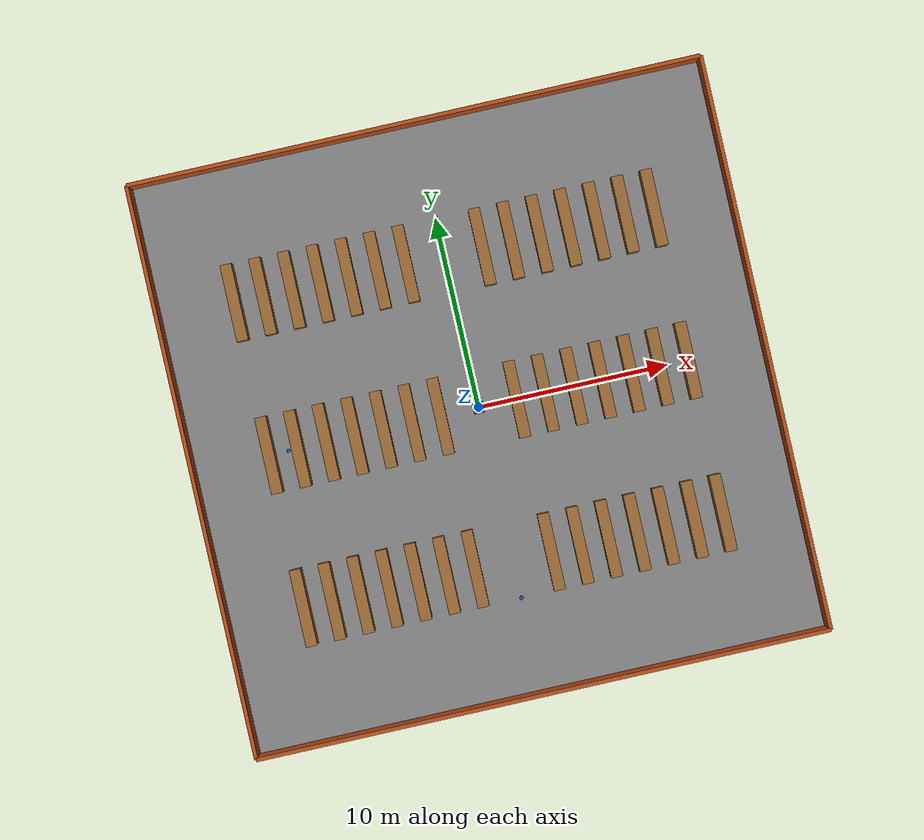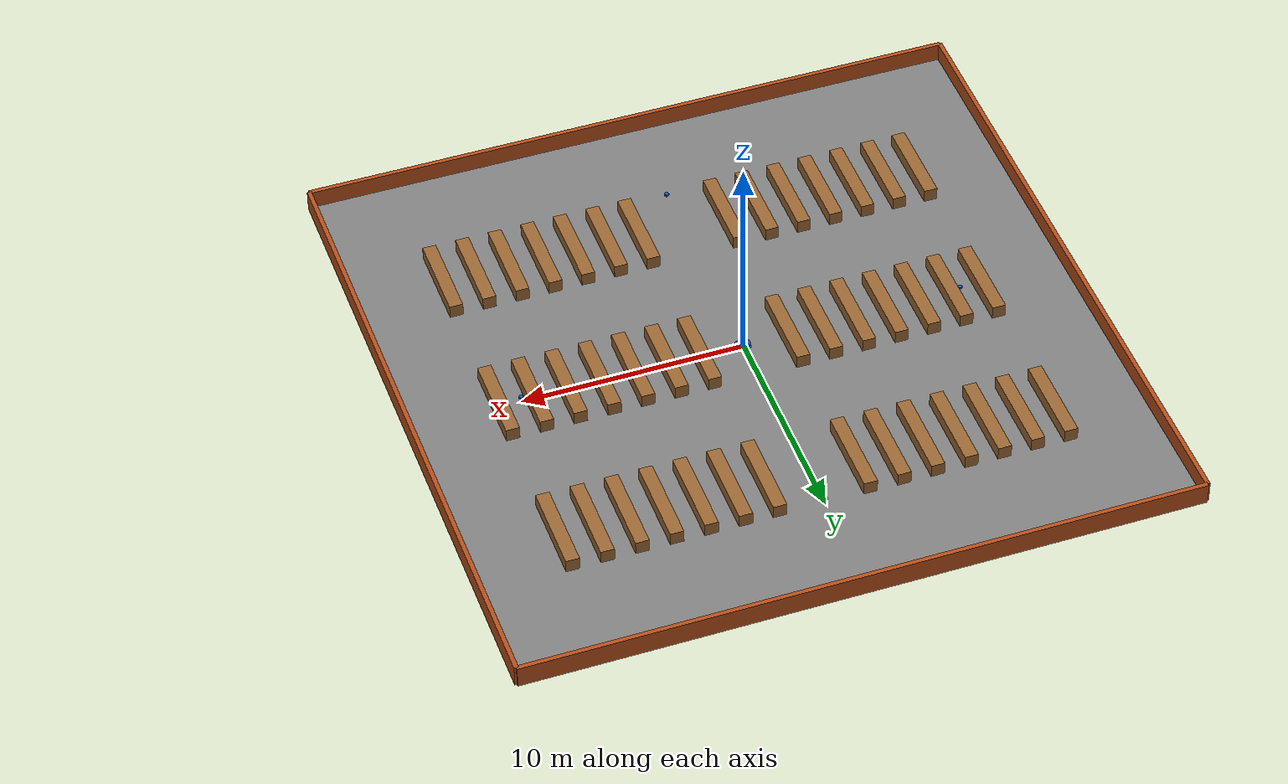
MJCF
<?xml version="1.0" encoding="utf-8"?>
<mujoco>
    <option timestep="0.002" integrator="RK4">
        <flag contact="enable" />
    </option>

    <default>
        <joint armature="1" damping="1" limited="true"/>
        <geom conaffinity="1" condim="3" friction="1 0.5 0.5" margin="0.01"/>
    </default>

    <asset>
        <material name="floor" rgba=".5 .5 .5 1"/>
        <material name="robot" rgba=".1 .3 .7 1"/>
        <material name="obstacle" rgba=".7 .3 .1 1"/>
        <material name="shelf" rgba=".6 .4 .2 1"/>
    </asset>

    <worldbody>
        <!-- Floor -->
        <geom name="floor" pos="0 0 0" size="15 15 0.1" type="plane" material="floor"/>

        <!-- Robot -->
        <body name="robot" pos="0 0 0.1">
            <joint name="robot_x" type="slide" axis="1 0 0" pos="0 0 0" range="-15 15"/>
            <joint name="robot_y" type="slide" axis="0 1 0" pos="0 0 0" range="-15 15"/>
            <joint name="robot_rot" type="hinge" axis="0 0 1" pos="0 0 0" range="-3.14159 3.14159"/>
            <geom name="robot_body" type="cylinder" size="0.3 0.1" material="robot"/>

            <!-- Wheels (visual only) -->
            <geom name="wheel1" type="cylinder" size="0.1 0.02" pos="0.2 0.2 0" material="robot"/>
            <geom name="wheel2" type="cylinder" size="0.1 0.02" pos="0.2 -0.2 0" material="robot"/>
            <geom name="wheel3" type="cylinder" size="0.1 0.02" pos="-0.2 0.2 0" material="robot"/>
            <geom name="wheel4" type="cylinder" size="0.1 0.02" pos="-0.2 -0.2 0" material="robot"/>
        </body>

        <!-- Static Obstacles -->
        <body name="obstacles" pos="0 0 0.3">
            <!-- Group 1 - Northwest Quadrant (Parallel Formation) -->
            <geom name="g1_shelf1" type="box" size="0.3 2.0 0.3" pos="-11 8 0" material="shelf"/>
            <geom name="g1_shelf2" type="box" size="0.3 2.0 0.3" pos="-9.5 8 0" material="shelf"/>
            <geom name="g1_shelf3" type="box" size="0.3 2.0 0.3" pos="-8 8 0" material="shelf"/>
            <geom name="g1_shelf4" type="box" size="0.3 2.0 0.3" pos="-6.5 8 0" material="shelf"/>
            <geom name="g1_shelf5" type="box" size="0.3 2.0 0.3" pos="-5 8 0" material="shelf"/>
            <geom name="g1_shelf6" type="box" size="0.3 2.0 0.3" pos="-3.5 8 0" material="shelf"/>
            <geom name="g1_shelf7" type="box" size="0.3 2.0 0.3" pos="-2 8 0" material="shelf"/>

            <!-- Group 2 - Northeast Quadrant (Parallel Formation) -->
            <geom name="g2_shelf1" type="box" size="0.3 2.0 0.3" pos="2 8 0" material="shelf"/>
            <geom name="g2_shelf2" type="box" size="0.3 2.0 0.3" pos="3.5 8 0" material="shelf"/>
            <geom name="g2_shelf3" type="box" size="0.3 2.0 0.3" pos="5 8 0" material="shelf"/>
            <geom name="g2_shelf4" type="box" size="0.3 2.0 0.3" pos="6.5 8 0" material="shelf"/>
            <geom name="g2_shelf5" type="box" size="0.3 2.0 0.3" pos="8 8 0" material="shelf"/>
            <geom name="g2_shelf6" type="box" size="0.3 2.0 0.3" pos="9.5 8 0" material="shelf"/>
            <geom name="g2_shelf7" type="box" size="0.3 2.0 0.3" pos="11 8 0" material="shelf"/>

            <!-- Group 3 - Southwest Quadrant (Parallel Formation) -->
            <geom name="g3_shelf1" type="box" size="0.3 2.0 0.3" pos="-11 -8 0" material="shelf"/>
            <geom name="g3_shelf2" type="box" size="0.3 2.0 0.3" pos="-9.5 -8 0" material="shelf"/>
            <geom name="g3_shelf3" type="box" size="0.3 2.0 0.3" pos="-8 -8 0" material="shelf"/>
            <geom name="g3_shelf4" type="box" size="0.3 2.0 0.3" pos="-6.5 -8 0" material="shelf"/>
            <geom name="g3_shelf5" type="box" size="0.3 2.0 0.3" pos="-5 -8 0" material="shelf"/>
            <geom name="g3_shelf6" type="box" size="0.3 2.0 0.3" pos="-3.5 -8 0" material="shelf"/>
            <geom name="g3_shelf7" type="box" size="0.3 2.0 0.3" pos="-2 -8 0" material="shelf"/>

            <!-- Group 4 - Southeast Quadrant (Parallel Formation) -->
            <geom name="g4_shelf1" type="box" size="0.3 2.0 0.3" pos="2 -8 0" material="shelf"/>
            <geom name="g4_shelf2" type="box" size="0.3 2.0 0.3" pos="3.5 -8 0" material="shelf"/>
            <geom name="g4_shelf3" type="box" size="0.3 2.0 0.3" pos="5 -8 0" material="shelf"/>
            <geom name="g4_shelf4" type="box" size="0.3 2.0 0.3" pos="6.5 -8 0" material="shelf"/>
            <geom name="g4_shelf5" type="box" size="0.3 2.0 0.3" pos="8 -8 0" material="shelf"/>
            <geom name="g4_shelf6" type="box" size="0.3 2.0 0.3" pos="9.5 -8 0" material="shelf"/>
            <geom name="g4_shelf7" type="box" size="0.3 2.0 0.3" pos="11 -8 0" material="shelf"/>

            <!-- Group 5 - Center West (Parallel Formation) -->
            <geom name="g5_shelf1" type="box" size="0.3 2.0 0.3" pos="-11 0 0" material="shelf"/>
            <geom name="g5_shelf2" type="box" size="0.3 2.0 0.3" pos="-9.5 0 0" material="shelf"/>
            <geom name="g5_shelf3" type="box" size="0.3 2.0 0.3" pos="-8 0 0" material="shelf"/>
            <geom name="g5_shelf4" type="box" size="0.3 2.0 0.3" pos="-6.5 0 0" material="shelf"/>
            <geom name="g5_shelf5" type="box" size="0.3 2.0 0.3" pos="-5 0 0" material="shelf"/>
            <geom name="g5_shelf6" type="box" size="0.3 2.0 0.3" pos="-3.5 0 0" material="shelf"/>
            <geom name="g5_shelf7" type="box" size="0.3 2.0 0.3" pos="-2 0 0" material="shelf"/>

            <!-- Group 6 - Center East (Parallel Formation) -->
            <geom name="g6_shelf1" type="box" size="0.3 2.0 0.3" pos="2 0 0" material="shelf"/>
            <geom name="g6_shelf2" type="box" size="0.3 2.0 0.3" pos="3.5 0 0" material="shelf"/>
            <geom name="g6_shelf3" type="box" size="0.3 2.0 0.3" pos="5 0 0" material="shelf"/>
            <geom name="g6_shelf4" type="box" size="0.3 2.0 0.3" pos="6.5 0 0" material="shelf"/>
            <geom name="g6_shelf5" type="box" size="0.3 2.0 0.3" pos="8 0 0" material="shelf"/>
            <geom name="g6_shelf6" type="box" size="0.3 2.0 0.3" pos="9.5 0 0" material="shelf"/>
            <geom name="g6_shelf7" type="box" size="0.3 2.0 0.3" pos="11 0 0" material="shelf"/>

            <!-- Navigation Markers -->
            <geom name="center_marker" type="cylinder" size="0.1 0.05" pos="0 0 0" material="robot"/>
            <geom name="north_marker" type="cylinder" size="0.1 0.05" pos="0 10 0" material="robot"/>
            <geom name="south_marker" type="cylinder" size="0.1 0.05" pos="0 -10 0" material="robot"/>
            <geom name="east_marker" type="cylinder" size="0.1 0.05" pos="10 0 0" material="robot"/>
            <geom name="west_marker" type="cylinder" size="0.1 0.05" pos="-10 0 0" material="robot"/>

            <!-- Boundary walls -->
            <geom name="wall1" type="box" size="15 0.1 0.5" pos="0 15 0" material="obstacle"/>
            <geom name="wall2" type="box" size="15 0.1 0.5" pos="0 -15 0" material="obstacle"/>
            <geom name="wall3" type="box" size="0.1 15 0.5" pos="15 0 0" material="obstacle"/>
            <geom name="wall4" type="box" size="0.1 15 0.5" pos="-15 0 0" material="obstacle"/>
        </body>
    </worldbody>

    <actuator>
        <!-- Robot control -->
        <motor name="right_wheel" joint="robot_rot" gear="1"/>
        <motor name="left_wheel" joint="robot_rot" gear="-1"/>
    </actuator>

    <sensor>
        <!-- Robot sensors -->
        <jointpos name="robot_x_sensor" joint="robot_x"/>
        <jointpos name="robot_y_sensor" joint="robot_y"/>
        <jointpos name="robot_rot_sensor" joint="robot_rot"/>
    </sensor>
</mujoco>
